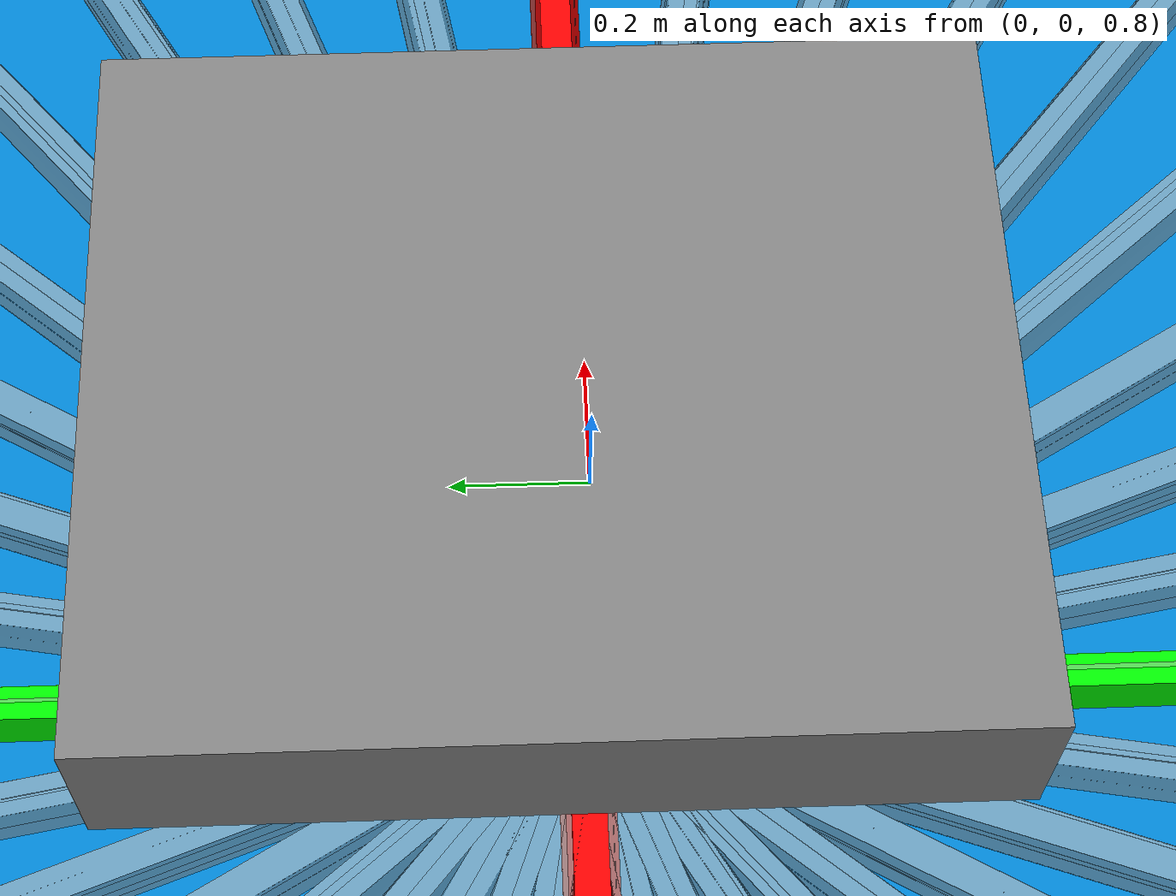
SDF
<?xml version="1.0" ?>
<sdf version="1.6">
  <world name="default">
    <gravity>0 0 0</gravity>

    <plugin name="gazebo_ros_state" filename="libgazebo_ros_state.so">
      <ros>
        <namespace>/gazebo</namespace>
      </ros>
      <update_rate>100.0</update_rate>
      <publish_model_states>false</publish_model_states>
      <publish_link_states>false</publish_link_states>
    </plugin>

    <include>
      <uri>model://sun</uri>
    </include>

    <model name="ocean">
      <static>true</static>
      <pose>0 0 0 0 0 0</pose>
      <link name="ocean_link">
        <visual name="ocean_visual">
          <geometry>
            <plane>
              <normal>0 0 1</normal>
              <size>20000 20000</size>
            </plane>
          </geometry>
          <material>
            <script>
              <uri>file://media/materials/scripts/gazebo.material</uri>
              <name>Gazebo/Water</name>
            </script>
            <ambient>0.0 0.35 0.60 0.85</ambient>
            <diffuse>0.0 0.50 0.80 0.85</diffuse>
            <specular>0.4 0.4 0.4 1.0</specular>
          </material>
          <plugin name="wave_visual" filename="libgazebo_ros_wave_visual.so">
            <ros>
              <namespace>/ocean</namespace>
            </ros>
            <topic>wave_height</topic>
            <update_rate>20.0</update_rate>
          </plugin>
        </visual>
      </link>
    </model>

    <!-- Modelo cargado desde la carpeta local -->
    <include>
      <name>ekranoplano</name>
      <uri>model://mi_ekranoplano</uri>
      <pose>0 0 1 0 0 0</pose>
    </include>

    <gui fullscreen='0'>

      <camera name='user_camera'>
        <pose>0 0 1 0 0 1.5708</pose>
        <view_controller>orbit</view_controller>
      </camera>
      <!-- Se ha eliminado user_camera de aquí -->
      <plugin name='keyboard' filename='libKeyboardGUIPlugin.so'/>

      <grid>
        <origin>0 0 0</origin>
        <size>20000 20000</size>
        <cell_size>100 100</cell_size>
        <cell_count>200</cell_count>
      </grid>
    </gui>

    <!-- Rosa de referencia XY cargada externamente -->
    <include>
      <name>ejes_radiales</name>
      <uri>model://rosa_referencia</uri>
      <pose>0 0 0 0 0 0</pose>
    </include>

  </world>
</sdf>

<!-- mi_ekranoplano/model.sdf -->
<sdf version="1.6">
  <model name="mi_ekranoplano">
    <static>true</static>
    <link name="base_link">
      <visual name="visual">

        <pose>0 0 0 0 0 0</pose>
        <geometry>
          <mesh>
            <uri>model://mi_ekranoplano/meshes/AIRFISH-8_EKRANOPLANO.dae</uri>
            <scale>1 1 1</scale>
          </mesh>
        </geometry>
      </visual>

      <collision name="collision">
        <pose>0 0 0 0 0 0</pose>
        <geometry>
          <mesh>
            <uri>model://mi_ekranoplano/meshes/AIRFISH-8_EKRANOPLANO.dae</uri>
            <scale>1 1 1</scale>
          </mesh>
        </geometry>
      </collision>

    </link>
  </model>
</sdf>

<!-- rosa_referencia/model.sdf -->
<sdf version="1.6">
  <model name="xy_reference_wheel">
    <static>true</static>
    <!-- Rosa de referencia XY: 36 líneas radiales cada 10° como rayos de rueda -->
    <!-- X+ = rojo brillante | Y+ = verde brillante | opuestos = oscuros | resto = gris -->
    <model name="xy_reference_wheel">
      <static>true</static>
      <pose>0 0 0 0 0 0</pose>

      <!-- 0deg = X+ ROJO -->
      <link name="line_x_pos">
        <visual name="vis_x_pos">
          <pose>250.0000 0.0000 0.02 0 1.570796 0.000000</pose>
          <geometry><cylinder><radius>0.05</radius><length>22000</length></cylinder></geometry>
          <material><ambient>1 0 0 1</ambient><diffuse>1 0 0 1</diffuse></material>
        </visual>
      </link>

      <!-- 10deg -->
      <link name="line_ray_010">
        <visual name="vis_ray_010">
          <pose>246.2019 43.4120 0.02 0 1.570796 0.174533</pose>
          <geometry><cylinder><radius>0.05</radius><length>22000</length></cylinder></geometry>
          <material><ambient>0.7 0.7 0.7 0.6</ambient><diffuse>0.7 0.7 0.7 0.6</diffuse></material>
        </visual>
      </link>

      <!-- 20deg -->
      <link name="line_ray_020">
        <visual name="vis_ray_020">
          <pose>234.9232 85.5050 0.02 0 1.570796 0.349066</pose>
          <geometry><cylinder><radius>0.05</radius><length>22000</length></cylinder></geometry>
          <material><ambient>0.7 0.7 0.7 0.6</ambient><diffuse>0.7 0.7 0.7 0.6</diffuse></material>
        </visual>
      </link>

      <!-- 30deg -->
      <link name="line_ray_030">
        <visual name="vis_ray_030">
          <pose>216.5064 125.0000 0.02 0 1.570796 0.523599</pose>
          <geometry><cylinder><radius>0.05</radius><length>22000</length></cylinder></geometry>
          <material><ambient>0.7 0.7 0.7 0.6</ambient><diffuse>0.7 0.7 0.7 0.6</diffuse></material>
        </visual>
      </link>

      <!-- 40deg -->
      <link name="line_ray_040">
        <visual name="vis_ray_040">
          <pose>191.5111 160.6969 0.02 0 1.570796 0.698132</pose>
          <geometry><cylinder><radius>0.05</radius><length>22000</length></cylinder></geometry>
          <material><ambient>0.7 0.7 0.7 0.6</ambient><diffuse>0.7 0.7 0.7 0.6</diffuse></material>
        </visual>
      </link>

      <!-- 50deg -->
      <link name="line_ray_050">
        <visual name="vis_ray_050">
          <pose>160.6969 191.5111 0.02 0 1.570796 0.872665</pose>
          <geometry><cylinder><radius>0.05</radius><length>22000</length></cylinder></geometry>
          <material><ambient>0.7 0.7 0.7 0.6</ambient><diffuse>0.7 0.7 0.7 0.6</diffuse></material>
        </visual>
      </link>

      <!-- 60deg -->
      <link name="line_ray_060">
        <visual name="vis_ray_060">
          <pose>125.0000 216.5064 0.02 0 1.570796 1.047198</pose>
          <geometry><cylinder><radius>0.05</radius><length>22000</length></cylinder></geometry>
          <material><ambient>0.7 0.7 0.7 0.6</ambient><diffuse>0.7 0.7 0.7 0.6</diffuse></material>
        </visual>
      </link>

      <!-- 70deg -->
      <link name="line_ray_070">
        <visual name="vis_ray_070">
          <pose>85.5050 234.9232 0.02 0 1.570796 1.221730</pose>
          <geometry><cylinder><radius>0.05</radius><length>22000</length></cylinder></geometry>
          <material><ambient>0.7 0.7 0.7 0.6</ambient><diffuse>0.7 0.7 0.7 0.6</diffuse></material>
        </visual>
      </link>

      <!-- 80deg -->
      <link name="line_ray_080">
        <visual name="vis_ray_080">
          <pose>43.4120 246.2019 0.02 0 1.570796 1.396263</pose>
          <geometry><cylinder><radius>0.05</radius><length>22000</length></cylinder></geometry>
          <material><ambient>0.7 0.7 0.7 0.6</ambient><diffuse>0.7 0.7 0.7 0.6</diffuse></material>
        </visual>
      </link>

      <!-- 90deg = Y+ VERDE -->
      <link name="line_y_pos">
        <visual name="vis_y_pos">
          <pose>0.0000 250.0000 0.02 0 1.570796 1.570796</pose>
          <geometry><cylinder><radius>0.05</radius><length>22000</length></cylinder></geometry>
          <material><ambient>0 1 0 1</ambient><diffuse>0 1 0 1</diffuse></material>
        </visual>
      </link>

      <!-- 100deg -->
      <link name="line_ray_100">
        <visual name="vis_ray_100">
          <pose>-43.4120 246.2019 0.02 0 1.570796 1.745329</pose>
          <geometry><cylinder><radius>0.05</radius><length>22000</length></cylinder></geometry>
          <material><ambient>0.7 0.7 0.7 0.6</ambient><diffuse>0.7 0.7 0.7 0.6</diffuse></material>
        </visual>
      </link>

      <!-- 110deg -->
      <link name="line_ray_110">
        <visual name="vis_ray_110">
          <pose>-85.5050 234.9232 0.02 0 1.570796 1.919862</pose>
          <geometry><cylinder><radius>0.05</radius><length>22000</length></cylinder></geometry>
          <material><ambient>0.7 0.7 0.7 0.6</ambient><diffuse>0.7 0.7 0.7 0.6</diffuse></material>
        </visual>
      </link>

      <!-- 120deg -->
      <link name="line_ray_120">
        <visual name="vis_ray_120">
          <pose>-125.0000 216.5064 0.02 0 1.570796 2.094395</pose>
          <geometry><cylinder><radius>0.05</radius><length>22000</length></cylinder></geometry>
          <material><ambient>0.7 0.7 0.7 0.6</ambient><diffuse>0.7 0.7 0.7 0.6</diffuse></material>
        </visual>
      </link>

      <!-- 130deg -->
      <link name="line_ray_130">
        <visual name="vis_ray_130">
          <pose>-160.6969 191.5111 0.02 0 1.570796 2.268928</pose>
          <geometry><cylinder><radius>0.05</radius><length>22000</length></cylinder></geometry>
          <material><ambient>0.7 0.7 0.7 0.6</ambient><diffuse>0.7 0.7 0.7 0.6</diffuse></material>
        </visual>
      </link>

      <!-- 140deg -->
      <link name="line_ray_140">
        <visual name="vis_ray_140">
          <pose>-191.5111 160.6969 0.02 0 1.570796 2.443461</pose>
          <geometry><cylinder><radius>0.05</radius><length>22000</length></cylinder></geometry>
          <material><ambient>0.7 0.7 0.7 0.6</ambient><diffuse>0.7 0.7 0.7 0.6</diffuse></material>
        </visual>
      </link>

      <!-- 150deg -->
      <link name="line_ray_150">
        <visual name="vis_ray_150">
          <pose>-216.5064 125.0000 0.02 0 1.570796 2.617994</pose>
          <geometry><cylinder><radius>0.05</radius><length>22000</length></cylinder></geometry>
          <material><ambient>0.7 0.7 0.7 0.6</ambient><diffuse>0.7 0.7 0.7 0.6</diffuse></material>
        </visual>
      </link>

      <!-- 160deg -->
      <link name="line_ray_160">
        <visual name="vis_ray_160">
          <pose>-234.9232 85.5050 0.02 0 1.570796 2.792527</pose>
          <geometry><cylinder><radius>0.05</radius><length>22000</length></cylinder></geometry>
          <material><ambient>0.7 0.7 0.7 0.6</ambient><diffuse>0.7 0.7 0.7 0.6</diffuse></material>
        </visual>
      </link>

      <!-- 170deg -->
      <link name="line_ray_170">
        <visual name="vis_ray_170">
          <pose>-246.2019 43.4120 0.02 0 1.570796 2.967060</pose>
          <geometry><cylinder><radius>0.05</radius><length>22000</length></cylinder></geometry>
          <material><ambient>0.7 0.7 0.7 0.6</ambient><diffuse>0.7 0.7 0.7 0.6</diffuse></material>
        </visual>
      </link>

      <!-- 180deg = X- ROJO OSCURO -->
      <link name="line_x_neg">
        <visual name="vis_x_neg">
          <pose>-250.0000 0.0000 0.02 0 1.570796 3.141593</pose>
          <geometry><cylinder><radius>0.05</radius><length>22000</length></cylinder></geometry>
          <material><ambient>0.8 0.3 0.3 1</ambient><diffuse>0.8 0.3 0.3 1</diffuse></material>
        </visual>
      </link>

      <!-- 190deg -->
      <link name="line_ray_190">
        <visual name="vis_ray_190">
          <pose>-246.2019 -43.4120 0.02 0 1.570796 3.316126</pose>
          <geometry><cylinder><radius>0.05</radius><length>22000</length></cylinder></geometry>
          <material><ambient>0.7 0.7 0.7 0.6</ambient><diffuse>0.7 0.7 0.7 0.6</diffuse></material>
        </visual>
      </link>

      <!-- 200deg -->
      <link name="line_ray_200">
        <visual name="vis_ray_200">
          <pose>-234.9232 -85.5050 0.02 0 1.570796 3.490659</pose>
          <geometry><cylinder><radius>0.05</radius><length>22000</length></cylinder></geometry>
          <material><ambient>0.7 0.7 0.7 0.6</ambient><diffuse>0.7 0.7 0.7 0.6</diffuse></material>
        </visual>
      </link>

      <!-- 210deg -->
      <link name="line_ray_210">
        <visual name="vis_ray_210">
          <pose>-216.5064 -125.0000 0.02 0 1.570796 3.665191</pose>
          <geometry><cylinder><radius>0.05</radius><length>22000</length></cylinder></geometry>
          <material><ambient>0.7 0.7 0.7 0.6</ambient><diffuse>0.7 0.7 0.7 0.6</diffuse></material>
        </visual>
      </link>

      <!-- 220deg -->
      <link name="line_ray_220">
        <visual name="vis_ray_220">
          <pose>-191.5111 -160.6969 0.02 0 1.570796 3.839724</pose>
          <geometry><cylinder><radius>0.05</radius><length>22000</length></cylinder></geometry>
          <material><ambient>0.7 0.7 0.7 0.6</ambient><diffuse>0.7 0.7 0.7 0.6</diffuse></material>
        </visual>
      </link>

      <!-- 230deg -->
      <link name="line_ray_230">
        <visual name="vis_ray_230">
          <pose>-160.6969 -191.5111 0.02 0 1.570796 4.014257</pose>
          <geometry><cylinder><radius>0.05</radius><length>22000</length></cylinder></geometry>
          <material><ambient>0.7 0.7 0.7 0.6</ambient><diffuse>0.7 0.7 0.7 0.6</diffuse></material>
        </visual>
      </link>

      <!-- 240deg -->
      <link name="line_ray_240">
        <visual name="vis_ray_240">
          <pose>-125.0000 -216.5064 0.02 0 1.570796 4.188790</pose>
          <geometry><cylinder><radius>0.05</radius><length>22000</length></cylinder></geometry>
          <material><ambient>0.7 0.7 0.7 0.6</ambient><diffuse>0.7 0.7 0.7 0.6</diffuse></material>
        </visual>
      </link>

      <!-- 250deg -->
      <link name="line_ray_250">
        <visual name="vis_ray_250">
          <pose>-85.5050 -234.9232 0.02 0 1.570796 4.363323</pose>
          <geometry><cylinder><radius>0.05</radius><length>22000</length></cylinder></geometry>
          <material><ambient>0.7 0.7 0.7 0.6</ambient><diffuse>0.7 0.7 0.7 0.6</diffuse></material>
        </visual>
      </link>

      <!-- 260deg -->
      <link name="line_ray_260">
        <visual name="vis_ray_260">
          <pose>-43.4120 -246.2019 0.02 0 1.570796 4.537856</pose>
          <geometry><cylinder><radius>0.05</radius><length>22000</length></cylinder></geometry>
          <material><ambient>0.7 0.7 0.7 0.6</ambient><diffuse>0.7 0.7 0.7 0.6</diffuse></material>
        </visual>
      </link>

      <!-- 270deg = Y- VERDE OSCURO -->
      <link name="line_y_neg">
        <visual name="vis_y_neg">
          <pose>0.0000 -250.0000 0.02 0 1.570796 4.712389</pose>
          <geometry><cylinder><radius>0.05</radius><length>22000</length></cylinder></geometry>
          <material><ambient>0.3 0.8 0.3 1</ambient><diffuse>0.3 0.8 0.3 1</diffuse></material>
        </visual>
      </link>

      <!-- 280deg -->
      <link name="line_ray_280">
        <visual name="vis_ray_280">
          <pose>43.4120 -246.2019 0.02 0 1.570796 4.886922</pose>
          <geometry><cylinder><radius>0.05</radius><length>22000</length></cylinder></geometry>
          <material><ambient>0.7 0.7 0.7 0.6</ambient><diffuse>0.7 0.7 0.7 0.6</diffuse></material>
        </visual>
      </link>

      <!-- 290deg -->
      <link name="line_ray_290">
        <visual name="vis_ray_290">
          <pose>85.5050 -234.9232 0.02 0 1.570796 5.061455</pose>
          <geometry><cylinder><radius>0.05</radius><length>22000</length></cylinder></geometry>
          <material><ambient>0.7 0.7 0.7 0.6</ambient><diffuse>0.7 0.7 0.7 0.6</diffuse></material>
        </visual>
      </link>

      <!-- 300deg -->
      <link name="line_ray_300">
        <visual name="vis_ray_300">
          <pose>125.0000 -216.5064 0.02 0 1.570796 5.235988</pose>
          <geometry><cylinder><radius>0.05</radius><length>22000</length></cylinder></geometry>
          <material><ambient>0.7 0.7 0.7 0.6</ambient><diffuse>0.7 0.7 0.7 0.6</diffuse></material>
        </visual>
      </link>

      <!-- 310deg -->
      <link name="line_ray_310">
        <visual name="vis_ray_310">
          <pose>160.6969 -191.5111 0.02 0 1.570796 5.410521</pose>
          <geometry><cylinder><radius>0.05</radius><length>22000</length></cylinder></geometry>
          <material><ambient>0.7 0.7 0.7 0.6</ambient><diffuse>0.7 0.7 0.7 0.6</diffuse></material>
        </visual>
      </link>

      <!-- 320deg -->
      <link name="line_ray_320">
        <visual name="vis_ray_320">
          <pose>191.5111 -160.6969 0.02 0 1.570796 5.585054</pose>
          <geometry><cylinder><radius>0.05</radius><length>22000</length></cylinder></geometry>
          <material><ambient>0.7 0.7 0.7 0.6</ambient><diffuse>0.7 0.7 0.7 0.6</diffuse></material>
        </visual>
      </link>

      <!-- 330deg -->
      <link name="line_ray_330">
        <visual name="vis_ray_330">
          <pose>216.5064 -125.0000 0.02 0 1.570796 5.759587</pose>
          <geometry><cylinder><radius>0.05</radius><length>22000</length></cylinder></geometry>
          <material><ambient>0.7 0.7 0.7 0.6</ambient><diffuse>0.7 0.7 0.7 0.6</diffuse></material>
        </visual>
      </link>

      <!-- 340deg -->
      <link name="line_ray_340">
        <visual name="vis_ray_340">
          <pose>234.9232 -85.5050 0.02 0 1.570796 5.934120</pose>
          <geometry><cylinder><radius>0.05</radius><length>22000</length></cylinder></geometry>
          <material><ambient>0.7 0.7 0.7 0.6</ambient><diffuse>0.7 0.7 0.7 0.6</diffuse></material>
        </visual>
      </link>

      <!-- 350deg -->
      <link name="line_ray_350">
        <visual name="vis_ray_350">
          <pose>246.2019 -43.4120 0.02 0 1.570796 6.108652</pose>
          <geometry><cylinder><radius>0.05</radius><length>22000</length></cylinder></geometry>
          <material><ambient>0.7 0.7 0.7 0.6</ambient><diffuse>0.7 0.7 0.7 0.6</diffuse></material>
        </visual>
      </link>

    </model>

  </model>
</sdf>
